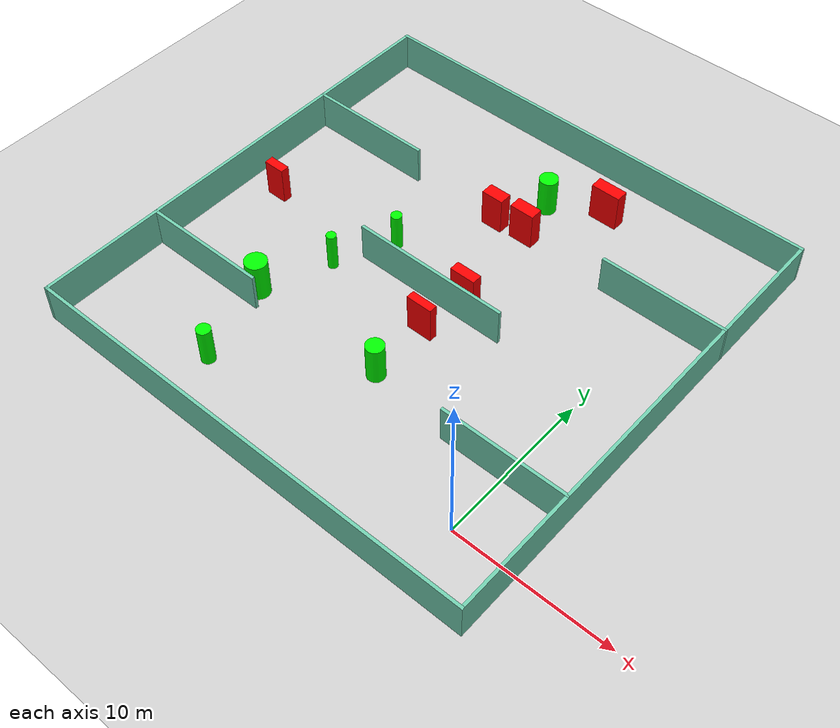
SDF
<sdf version="1.7">
 <world name="default">
  <light name="sun" type="directional">
   <pose>0 0 10 0 -0 0</pose>
   <diffuse>0.8 0.8 0.8 1</diffuse>
   <specular>0.2 0.2 0.2 1</specular>
   <attenuation>
    <range>1000</range>
    <constant>0.9</constant>
    <linear>0.01</linear>
    <quadratic>0.001</quadratic>
   </attenuation>
   <direction>-0.5 0.1 -0.9</direction>
   <spot><inner_angle>0</inner_angle><outer_angle>0</outer_angle><falloff>0</falloff></spot>
  </light>
  <model name="ground_plane">
   <static>1</static>
   <link name="link">
    <collision name="collision">
     <geometry><plane><normal>0 0 1</normal><size>100 100</size></plane></geometry>
     <surface>
      <contact><collide_bitmask>65535</collide_bitmask></contact>
      <friction><ode><mu>100</mu><mu2>50</mu2></ode></friction>
     </surface>
    </collision>
    <visual name="visual">
     <cast_shadows>0</cast_shadows>
     <geometry><plane><normal>0 0 1</normal><size>100 100</size></plane></geometry>
     <material>
      <script><uri>file://media/materials/scripts/gazebo.material</uri><name>Gazebo/Grey</name></script>
     </material>
    </visual>
   </link>
  </model>
  <gravity>0 0 -9.8</gravity>
  <magnetic_field>6e-06 2.3e-05 -4.2e-05</magnetic_field>
  <atmosphere type="adiabatic"/>
  <physics type="ode">
   <max_step_size>0.001</max_step_size>
   <real_time_factor>1</real_time_factor>
   <real_time_update_rate>1000</real_time_update_rate>
  </physics>
  <scene><ambient>0.4 0.4 0.4 1</ambient><background>0.7 0.7 0.7 1</background><shadows>1</shadows></scene>
  <spherical_coordinates>
   <surface_model>EARTH_WGS84</surface_model>
   <latitude_deg>0</latitude_deg>
   <longitude_deg>0</longitude_deg>
   <elevation>0</elevation>
   <heading_deg>0</heading_deg>
  </spherical_coordinates>
  <model name="my_base_walls">
   <link name="Wall_10">
    <collision name="Wall_10_Collision">
     <geometry><box><size>8.2 0.2 2.5</size></box></geometry>
     <pose>0 0 1.25 0 -0 0</pose>
    </collision>
    <visual name="Wall_10_Visual">
     <pose>0 0 1.25 0 -0 0</pose>
     <geometry><box><size>8.2 0.2 2.5</size></box></geometry>
     <material>
      <script><uri>file://media/materials/scripts/gazebo.material</uri><name>Gazebo/Grey</name></script>
      <ambient>0.435294 0.796078 0.67451 1</ambient>
     </material>
     <meta><layer>0</layer></meta>
    </visual>
    <pose>-11 -7 0 0 -0 0</pose>
   </link>
   <link name="Wall_12">
    <collision name="Wall_12_Collision">
     <geometry><box><size>8.2 0.2 2.5</size></box></geometry>
     <pose>0 0 1.25 0 -0 0</pose>
    </collision>
    <visual name="Wall_12_Visual">
     <pose>0 0 1.25 0 -0 0</pose>
     <geometry><box><size>8.2 0.2 2.5</size></box></geometry>
     <material>
      <script><uri>file://media/materials/scripts/gazebo.material</uri><name>Gazebo/Grey</name></script>
      <ambient>0.435294 0.796078 0.67451 1</ambient>
     </material>
     <meta><layer>0</layer></meta>
    </visual>
    <pose>-11 7 0 0 -0 0</pose>
   </link>
   <link name="Wall_14">
    <collision name="Wall_14_Collision">
     <geometry><box><size>8.2 0.2 2.5</size></box></geometry>
     <pose>0 0 1.25 0 -0 0</pose>
    </collision>
    <visual name="Wall_14_Visual">
     <pose>0 0 1.25 0 -0 0</pose>
     <geometry><box><size>8.2 0.2 2.5</size></box></geometry>
     <material>
      <script><uri>file://media/materials/scripts/gazebo.material</uri><name>Gazebo/Grey</name></script>
      <ambient>0.435294 0.796078 0.67451 1</ambient>
     </material>
     <meta><layer>0</layer></meta>
    </visual>
    <pose>11 7 0 0 -0 3.14159</pose>
   </link>
   <link name="Wall_16">
    <collision name="Wall_16_Collision">
     <geometry><box><size>10.2 0.2 2.5</size></box></geometry>
     <pose>0 0 1.25 0 -0 0</pose>
    </collision>
    <visual name="Wall_16_Visual">
     <pose>0 0 1.25 0 -0 0</pose>
     <geometry><box><size>10.2 0.2 2.5</size></box></geometry>
     <material>
      <script><uri>file://media/materials/scripts/gazebo.material</uri><name>Gazebo/Grey</name></script>
      <ambient>0.435294 0.796078 0.67451 1</ambient>
     </material>
     <meta><layer>0</layer></meta>
    </visual>
    <pose>0 0 0 0 -0 3.14159</pose>
   </link>
   <link name="Wall_2">
    <collision name="Wall_2_Collision">
     <geometry><box><size>30.2 0.2 2.5</size></box></geometry>
     <pose>0 0 1.25 0 -0 0</pose>
    </collision>
    <visual name="Wall_2_Visual">
     <pose>0 0 1.25 0 -0 0</pose>
     <geometry><box><size>30.2 0.2 2.5</size></box></geometry>
     <material>
      <script><uri>file://media/materials/scripts/gazebo.material</uri><name>Gazebo/Grey</name></script>
      <ambient>0.435294 0.796078 0.67451 1</ambient>
     </material>
     <meta><layer>0</layer></meta>
    </visual>
    <pose>0 -15 0 0 -0 3.14159</pose>
   </link>
   <link name="Wall_3">
    <collision name="Wall_3_Collision">
     <geometry><box><size>30.2 0.2 2.5</size></box></geometry>
     <pose>0 0 1.25 0 -0 0</pose>
    </collision>
    <visual name="Wall_3_Visual">
     <pose>0 0 1.25 0 -0 0</pose>
     <geometry><box><size>30.2 0.2 2.5</size></box></geometry>
     <material>
      <script><uri>file://media/materials/scripts/gazebo.material</uri><name>Gazebo/Grey</name></script>
      <ambient>0.435294 0.796078 0.67451 1</ambient>
     </material>
     <meta><layer>0</layer></meta>
    </visual>
    <pose>-15 0 0 0 -0 1.5708</pose>
   </link>
   <link name="Wall_4">
    <collision name="Wall_4_Collision">
     <geometry><box><size>30.2 0.2 2.5</size></box></geometry>
     <pose>0 0 1.25 0 -0 0</pose>
    </collision>
    <visual name="Wall_4_Visual">
     <pose>0 0 1.25 0 -0 0</pose>
     <geometry><box><size>30.2 0.2 2.5</size></box></geometry>
     <material>
      <script><uri>file://media/materials/scripts/gazebo.material</uri><name>Gazebo/Grey</name></script>
      <ambient>0.435294 0.796078 0.67451 1</ambient>
     </material>
     <meta><layer>0</layer></meta>
    </visual>
    <pose>0 15 0 0 -0 0</pose>
   </link>
   <link name="Wall_6">
    <collision name="Wall_6_Collision">
     <geometry><box><size>30.2 0.2 2.5</size></box></geometry>
     <pose>0 0 1.25 0 -0 0</pose>
    </collision>
    <visual name="Wall_6_Visual">
     <pose>0 0 1.25 0 -0 0</pose>
     <geometry><box><size>30.2 0.2 2.5</size></box></geometry>
     <material>
      <script><uri>file://media/materials/scripts/gazebo.material</uri><name>Gazebo/Grey</name></script>
      <ambient>0.435294 0.796078 0.67451 1</ambient>
     </material>
     <meta><layer>0</layer></meta>
    </visual>
    <pose>15 0 0 0 -0 1.5708</pose>
   </link>
   <link name="Wall_8">
    <collision name="Wall_8_Collision">
     <geometry><box><size>8.2 0.2 2.5</size></box></geometry>
     <pose>0 0 1.25 0 -0 0</pose>
    </collision>
    <visual name="Wall_8_Visual">
     <pose>0 0 1.25 0 -0 0</pose>
     <geometry><box><size>8.2 0.2 2.5</size></box></geometry>
     <material>
      <script><uri>file://media/materials/scripts/gazebo.material</uri><name>Gazebo/Grey</name></script>
      <ambient>0.435294 0.796078 0.67451 1</ambient>
     </material>
     <meta><layer>0</layer></meta>
    </visual>
    <pose>11 -7 0 0 -0 3.14159</pose>
   </link>
   <static>1</static>
   <pose>-11 11 0 0 -0 0</pose>
  </model>
  <model name="cylinder1">
   <static>1</static>
   <link name="link">
    <inertial>
     <mass>1</mass>
     <inertia><ixx>0.5</ixx><ixy>0</ixy><ixz>0</ixz><iyy>0.5</iyy><iyz>0</iyz><izz>1</izz></inertia>
    </inertial>
    <collision name="collision">
     <geometry><cylinder><radius>0.34630787133990065</radius><length>2.5</length></cylinder></geometry>
    </collision>
    <visual name="visual">
     <geometry><cylinder><radius>0.34630787133990065</radius><length>2.5</length></cylinder></geometry>
     <material>
      <ambient>0 1 0 1</ambient>
      <diffuse>0 1 0 1</diffuse>
      <specular>0.1 0.1 0.1 1</specular>
      <emissive>0 0 0 0</emissive>
     </material>
    </visual>
   </link>
   <pose>-15.20865427072247 12.927773855692337 1.25 0 0 0</pose>
  </model>
  <model name="cylinder2">
   <static>1</static>
   <link name="link">
    <inertial>
     <mass>1</mass>
     <inertia><ixx>0.5</ixx><ixy>0</ixy><ixz>0</ixz><iyy>0.5</iyy><iyz>0</iyz><izz>1</izz></inertia>
    </inertial>
    <collision name="collision">
     <geometry><cylinder><radius>0.43254520628783494</radius><length>2.5</length></cylinder></geometry>
    </collision>
    <visual name="visual">
     <geometry><cylinder><radius>0.43254520628783494</radius><length>2.5</length></cylinder></geometry>
     <material>
      <ambient>0 1 0 1</ambient>
      <diffuse>0 1 0 1</diffuse>
      <specular>0.1 0.1 0.1 1</specular>
      <emissive>0 0 0 0</emissive>
     </material>
    </visual>
   </link>
   <pose>-17.238733621222437 -0.366127831499806 1.25 0 0 0</pose>
  </model>
  <model name="cylinder3">
   <static>1</static>
   <link name="link">
    <inertial>
     <mass>1</mass>
     <inertia><ixx>0.5</ixx><ixy>0</ixy><ixz>0</ixz><iyy>0.5</iyy><iyz>0</iyz><izz>1</izz></inertia>
    </inertial>
    <collision name="collision">
     <geometry><cylinder><radius>0.5886699243081046</radius><length>2.5</length></cylinder></geometry>
    </collision>
    <visual name="visual">
     <geometry><cylinder><radius>0.5886699243081046</radius><length>2.5</length></cylinder></geometry>
     <material>
      <ambient>0 1 0 1</ambient>
      <diffuse>0 1 0 1</diffuse>
      <specular>0.1 0.1 0.1 1</specular>
      <emissive>0 0 0 0</emissive>
     </material>
    </visual>
   </link>
   <pose>-10.395113159767199 21.192152711273888 1.25 0 0 0</pose>
  </model>
  <model name="cylinder4">
   <static>1</static>
   <link name="link">
    <inertial>
     <mass>1</mass>
     <inertia><ixx>0.5</ixx><ixy>0</ixy><ixz>0</ixz><iyy>0.5</iyy><iyz>0</iyz><izz>1</izz></inertia>
    </inertial>
    <collision name="collision">
     <geometry><cylinder><radius>0.3141147777709238</radius><length>2.5</length></cylinder></geometry>
    </collision>
    <visual name="visual">
     <geometry><cylinder><radius>0.3141147777709238</radius><length>2.5</length></cylinder></geometry>
     <material>
      <ambient>0 1 0 1</ambient>
      <diffuse>0 1 0 1</diffuse>
      <specular>0.1 0.1 0.1 1</specular>
      <emissive>0 0 0 0</emissive>
     </material>
    </visual>
   </link>
   <pose>-16.947899848920706 9.259773247403913 1.25 0 0 0</pose>
  </model>
  <model name="cylinder5">
   <static>1</static>
   <link name="link">
    <inertial>
     <mass>1</mass>
     <inertia><ixx>0.5</ixx><ixy>0</ixy><ixz>0</ixz><iyy>0.5</iyy><iyz>0</iyz><izz>1</izz></inertia>
    </inertial>
    <collision name="collision">
     <geometry><cylinder><radius>0.5641622415076469</radius><length>2.5</length></cylinder></geometry>
    </collision>
    <visual name="visual">
     <geometry><cylinder><radius>0.5641622415076469</radius><length>2.5</length></cylinder></geometry>
     <material>
      <ambient>0 1 0 1</ambient>
      <diffuse>0 1 0 1</diffuse>
      <specular>0.1 0.1 0.1 1</specular>
      <emissive>0 0 0 0</emissive>
     </material>
    </visual>
   </link>
   <pose>-9.49028166442234 4.834929587751503 1.25 0 0 0</pose>
  </model>
  <model name="cylinder6">
   <static>1</static>
   <link name="link">
    <inertial>
     <mass>1</mass>
     <inertia><ixx>0.5</ixx><ixy>0</ixy><ixz>0</ixz><iyy>0.5</iyy><iyz>0</iyz><izz>1</izz></inertia>
    </inertial>
    <collision name="collision">
     <geometry><cylinder><radius>0.6984562357649882</radius><length>2.5</length></cylinder></geometry>
    </collision>
    <visual name="visual">
     <geometry><cylinder><radius>0.6984562357649882</radius><length>2.5</length></cylinder></geometry>
     <material>
      <ambient>0 1 0 1</ambient>
      <diffuse>0 1 0 1</diffuse>
      <specular>0.1 0.1 0.1 1</specular>
      <emissive>0 0 0 0</emissive>
     </material>
    </visual>
   </link>
   <pose>-18.7449641359248 4.993984568510594 1.25 0 0 0</pose>
  </model>
  <model name="box1">
   <static>1</static>
   <link name="link">
    <inertial>
     <mass>1</mass>
     <inertia><ixx>0.083</ixx><ixy>0</ixy><ixz>0</ixz><iyy>0.083</iyy><iyz>0</iyz><izz>0.083</izz></inertia>
    </inertial>
    <collision name="collision">
     <geometry><box><size>1.9068146972985183 0.8117467871714354 2.5</size></box></geometry>
    </collision>
    <visual name="visual">
     <geometry><box><size>1.9068146972985183 0.8117467871714354 2.5</size></box></geometry>
     <material>
      <ambient>1 0 0 1</ambient>
      <diffuse>1 0 0 1</diffuse>
      <specular>0.1 0.1 0.1 1</specular>
      <emissive>0 0 0 0</emissive>
     </material>
    </visual>
    <sensor name="my_contact" type="contact">
     <contact><collision>box_collision</collision><topic>__default_topic__</topic></contact>
    </sensor>
   </link>
   <pose>-7.1597732303500585 22.832698432561468 1.25 0 0 0</pose>
  </model>
  <model name="box2">
   <static>1</static>
   <link name="link">
    <inertial>
     <mass>1</mass>
     <inertia><ixx>0.083</ixx><ixy>0</ixy><ixz>0</ixz><iyy>0.083</iyy><iyz>0</iyz><izz>0.083</izz></inertia>
    </inertial>
    <collision name="collision">
     <geometry><box><size>1.6782269243244674 0.6648667857014517 2.5</size></box></geometry>
    </collision>
    <visual name="visual">
     <geometry><box><size>1.6782269243244674 0.6648667857014517 2.5</size></box></geometry>
     <material>
      <ambient>1 0 0 1</ambient>
      <diffuse>1 0 0 1</diffuse>
      <specular>0.1 0.1 0.1 1</specular>
      <emissive>0 0 0 0</emissive>
     </material>
    </visual>
    <sensor name="my_contact" type="contact">
     <contact><collision>box_collision</collision><topic>__default_topic__</topic></contact>
    </sensor>
   </link>
   <pose>-9.247633780775182 12.08449251579667 1.25 0 0 0</pose>
  </model>
  <model name="box3">
   <static>1</static>
   <link name="link">
    <inertial>
     <mass>1</mass>
     <inertia><ixx>0.083</ixx><ixy>0</ixy><ixz>0</ixz><iyy>0.083</iyy><iyz>0</iyz><izz>0.083</izz></inertia>
    </inertial>
    <collision name="collision">
     <geometry><box><size>1.369092120243351 0.5776547807428074 2.5</size></box></geometry>
    </collision>
    <visual name="visual">
     <geometry><box><size>1.369092120243351 0.5776547807428074 2.5</size></box></geometry>
     <material>
      <ambient>1 0 0 1</ambient>
      <diffuse>1 0 0 1</diffuse>
      <specular>0.1 0.1 0.1 1</specular>
      <emissive>0 0 0 0</emissive>
     </material>
    </visual>
    <sensor name="my_contact" type="contact">
     <contact><collision>box_collision</collision><topic>__default_topic__</topic></contact>
    </sensor>
   </link>
   <pose>-23.548608838302123 11.431291324210973 1.25 0 0 0</pose>
  </model>
  <model name="box4">
   <static>1</static>
   <link name="link">
    <inertial>
     <mass>1</mass>
     <inertia><ixx>0.083</ixx><ixy>0</ixy><ixz>0</ixz><iyy>0.083</iyy><iyz>0</iyz><izz>0.083</izz></inertia>
    </inertial>
    <collision name="collision">
     <geometry><box><size>1.615043160848409 0.8349430528367905 2.5</size></box></geometry>
    </collision>
    <visual name="visual">
     <geometry><box><size>1.615043160848409 0.8349430528367905 2.5</size></box></geometry>
     <material>
      <ambient>1 0 0 1</ambient>
      <diffuse>1 0 0 1</diffuse>
      <specular>0.1 0.1 0.1 1</specular>
      <emissive>0 0 0 0</emissive>
     </material>
    </visual>
    <sensor name="my_contact" type="contact">
     <contact><collision>box_collision</collision><topic>__default_topic__</topic></contact>
    </sensor>
   </link>
   <pose>-9.895079371683629 18.32748566511939 1.25 0 0 0</pose>
  </model>
  <model name="box5">
   <static>1</static>
   <link name="link">
    <inertial>
     <mass>1</mass>
     <inertia><ixx>0.083</ixx><ixy>0</ixy><ixz>0</ixz><iyy>0.083</iyy><iyz>0</iyz><izz>0.083</izz></inertia>
    </inertial>
    <collision name="collision">
     <geometry><box><size>1.436460690499301 0.8249243031224642 2.5</size></box></geometry>
    </collision>
    <visual name="visual">
     <geometry><box><size>1.436460690499301 0.8249243031224642 2.5</size></box></geometry>
     <material>
      <ambient>1 0 0 1</ambient>
      <diffuse>1 0 0 1</diffuse>
      <specular>0.1 0.1 0.1 1</specular>
      <emissive>0 0 0 0</emissive>
     </material>
    </visual>
    <sensor name="my_contact" type="contact">
     <contact><collision>box_collision</collision><topic>__default_topic__</topic></contact>
    </sensor>
   </link>
   <pose>-11.963411033697493 18.151177505102854 1.25 0 0 0</pose>
  </model>
  <model name="box6">
   <static>1</static>
   <link name="link">
    <inertial>
     <mass>1</mass>
     <inertia><ixx>0.083</ixx><ixy>0</ixy><ixz>0</ixz><iyy>0.083</iyy><iyz>0</iyz><izz>0.083</izz></inertia>
    </inertial>
    <collision name="collision">
     <geometry><box><size>1.6906578824330798 0.5331972357548992 2.5</size></box></geometry>
    </collision>
    <visual name="visual">
     <geometry><box><size>1.6906578824330798 0.5331972357548992 2.5</size></box></geometry>
     <material>
      <ambient>1 0 0 1</ambient>
      <diffuse>1 0 0 1</diffuse>
      <specular>0.1 0.1 0.1 1</specular>
      <emissive>0 0 0 0</emissive>
     </material>
    </visual>
    <sensor name="my_contact" type="contact">
     <contact><collision>box_collision</collision><topic>__default_topic__</topic></contact>
    </sensor>
   </link>
   <pose>-9.672873143924498 8.83003793545795 1.25 0 0 0</pose>
  </model>
 </world>
</sdf>
